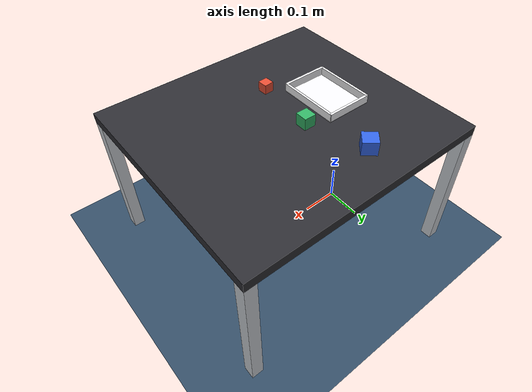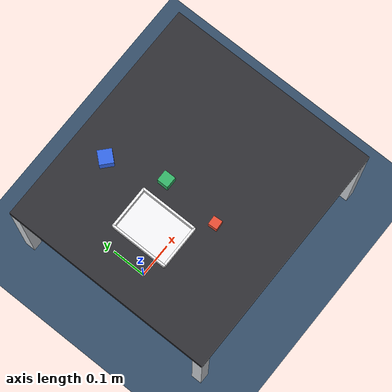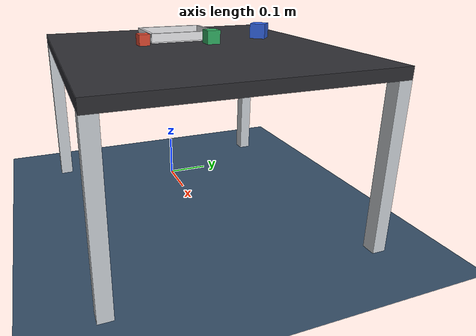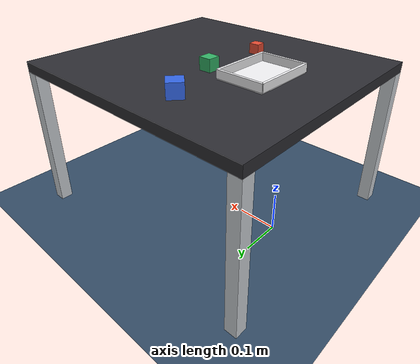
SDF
<?xml version="1.0" ?>
<!--
  Unified world for the SO-ARM101 table scene.
  Single source of truth — loaded natively in Gazebo and converted to MJCF
  at launch time for MuJoCo (via sdformat_mjcf).
-->
<sdf version="1.9">
  <world name="pai_world">

    <scene>
      <ambient>0.4 0.4 0.4</ambient>
      <grid>false</grid>
    </scene>

    <gui fullscreen="0">

      <!-- 3D scene -->
      <plugin filename="MinimalScene" name="3D View">
        <gz-gui>
          <title>3D View</title>
          <property type="bool" key="showTitleBar">false</property>
          <property type="string" key="state">docked</property>
        </gz-gui>
        <engine>ogre2</engine>
        <shadows>
          <enabled>true</enabled>
          <texture_size light_type="spotlight">2048</texture_size>
          <near>0.005</near>
          <far>10</far>
          <bias>0.001</bias>
        </shadows>
        <camera_clip>
          <near>0.05</near>
          <far>50000</far>
        </camera_clip>
        <camera_pose>-0.5 -0.8 1.5 0.0 0.54 1.11</camera_pose>
      </plugin>

      <plugin filename="GlobalIlluminationVct" name="GI">
        <gz-gui>
          <property type="string" key="state">docked_collapsed</property>
        </gz-gui>
        <enabled>true</enabled>
        <highQuality>false</highQuality>
        <resolution>256 256 256</resolution>
        <octantCount>1 1 1</octantCount>
        <conserveMemory>true</conserveMemory>
        <thinWallCounter>1.0</thinWallCounter>
        <anisotropic>true</anisotropic>
        <bounceCount>3</bounceCount>
      </plugin>

      <plugin filename="EntityContextMenuPlugin" name="Entity context menu">
        <gz-gui>
          <property key="state" type="string">floating</property>
          <property key="width" type="double">5</property>
          <property key="height" type="double">5</property>
          <property key="showTitleBar" type="bool">false</property>
        </gz-gui>
      </plugin>
      <plugin filename="GzSceneManager" name="Scene Manager">
        <gz-gui>
          <property key="resizable" type="bool">false</property>
          <property key="width" type="double">5</property>
          <property key="height" type="double">5</property>
          <property key="state" type="string">floating</property>
          <property key="showTitleBar" type="bool">false</property>
        </gz-gui>
      </plugin>
      <plugin filename="InteractiveViewControl" name="Interactive view control">
        <gz-gui>
          <property key="resizable" type="bool">false</property>
          <property key="width" type="double">5</property>
          <property key="height" type="double">5</property>
          <property key="state" type="string">floating</property>
          <property key="showTitleBar" type="bool">false</property>
        </gz-gui>
      </plugin>
      <plugin filename="CameraTracking" name="Camera Tracking">
        <gz-gui>
          <property key="resizable" type="bool">false</property>
          <property key="width" type="double">5</property>
          <property key="height" type="double">5</property>
          <property key="state" type="string">floating</property>
          <property key="showTitleBar" type="bool">false</property>
        </gz-gui>
      </plugin>
      <plugin filename="MarkerManager" name="Marker manager">
        <gz-gui>
          <property key="resizable" type="bool">false</property>
          <property key="width" type="double">5</property>
          <property key="height" type="double">5</property>
          <property key="state" type="string">floating</property>
          <property key="showTitleBar" type="bool">false</property>
        </gz-gui>
      </plugin>
      <plugin filename="SelectEntities" name="Select Entities">
        <gz-gui>
          <anchors target="Select entities">
            <line own="right" target="right"/>
            <line own="top" target="top"/>
          </anchors>
          <property key="resizable" type="bool">false</property>
          <property key="width" type="double">5</property>
          <property key="height" type="double">5</property>
          <property key="state" type="string">floating</property>
          <property key="showTitleBar" type="bool">false</property>
        </gz-gui>
      </plugin>
      <plugin filename="VisualizationCapabilities" name="Visualization Capabilities">
        <gz-gui>
          <property key="resizable" type="bool">false</property>
          <property key="width" type="double">5</property>
          <property key="height" type="double">5</property>
          <property key="state" type="string">floating</property>
          <property key="showTitleBar" type="bool">false</property>
        </gz-gui>
      </plugin>

      <plugin filename="Spawn" name="Spawn Entities">
        <gz-gui>
          <anchors target="Select entities">
            <line own="right" target="right"/>
            <line own="top" target="top"/>
          </anchors>
          <property key="resizable" type="bool">false</property>
          <property key="width" type="double">5</property>
          <property key="height" type="double">5</property>
          <property key="state" type="string">floating</property>
          <property key="showTitleBar" type="bool">false</property>
        </gz-gui>
      </plugin>

      <!-- World control -->
      <plugin filename="WorldControl" name="World control">
        <gz-gui>
          <title>World control</title>
          <property type="bool" key="showTitleBar">false</property>
          <property type="bool" key="resizable">false</property>
          <property type="double" key="height">72</property>
          <property type="double" key="z">1</property>
          <property type="string" key="state">floating</property>
          <anchors target="3D View">
            <line own="left" target="left"/>
            <line own="bottom" target="bottom"/>
          </anchors>
        </gz-gui>
        <play_pause>true</play_pause>
        <step>true</step>
        <start_paused>false</start_paused>
        <use_event>true</use_event>
      </plugin>

      <!-- World statistics -->
      <plugin filename="WorldStats" name="World stats">
        <gz-gui>
          <title>World stats</title>
          <property type="bool" key="showTitleBar">false</property>
          <property type="bool" key="resizable">false</property>
          <property type="double" key="height">110</property>
          <property type="double" key="width">290</property>
          <property type="double" key="z">1</property>
          <property type="string" key="state">floating</property>
          <anchors target="3D View">
            <line own="right" target="right"/>
            <line own="bottom" target="bottom"/>
          </anchors>
        </gz-gui>
        <sim_time>true</sim_time>
        <real_time>true</real_time>
        <real_time_factor>true</real_time_factor>
        <iterations>true</iterations>
      </plugin>

      <plugin filename="Shapes" name="Shapes">
        <gz-gui>
          <property key="resizable" type="bool">false</property>
          <property key="x" type="double">0</property>
          <property key="y" type="double">0</property>
          <property key="width" type="double">250</property>
          <property key="height" type="double">50</property>
          <property key="state" type="string">floating</property>
          <property key="showTitleBar" type="bool">false</property>
          <property key="cardBackground" type="string">#666666</property>
        </gz-gui>
      </plugin>

      <plugin filename="Lights" name="Lights">
        <gz-gui>
          <property key="resizable" type="bool">false</property>
          <property key="x" type="double">250</property>
          <property key="y" type="double">0</property>
          <property key="width" type="double">150</property>
          <property key="height" type="double">50</property>
          <property key="state" type="string">floating</property>
          <property key="showTitleBar" type="bool">false</property>
          <property key="cardBackground" type="string">#666666</property>
        </gz-gui>
      </plugin>

      <plugin filename="TransformControl" name="Transform control">
        <gz-gui>
          <property key="resizable" type="bool">false</property>
          <property key="x" type="double">0</property>
          <property key="y" type="double">50</property>
          <property key="width" type="double">250</property>
          <property key="height" type="double">50</property>
          <property key="state" type="string">floating</property>
          <property key="showTitleBar" type="bool">false</property>
          <property key="cardBackground" type="string">#777777</property>
        </gz-gui>
      </plugin>

      <plugin filename="Screenshot" name="Screenshot">
        <gz-gui>
          <property key="resizable" type="bool">false</property>
          <property key="x" type="double">250</property>
          <property key="y" type="double">50</property>
          <property key="width" type="double">50</property>
          <property key="height" type="double">50</property>
          <property key="state" type="string">floating</property>
          <property key="showTitleBar" type="bool">false</property>
          <property key="cardBackground" type="string">#777777</property>
        </gz-gui>
      </plugin>

      <plugin filename="VideoRecorder" name="VideoRecorder">
        <gz-gui>
          <property key="resizable" type="bool">false</property>
          <property key="x" type="double">300</property>
          <property key="y" type="double">50</property>
          <property key="width" type="double">50</property>
          <property key="height" type="double">50</property>
          <property key="state" type="string">floating</property>
          <property key="showTitleBar" type="bool">false</property>
          <property key="cardBackground" type="string">#777777</property>
        </gz-gui>
        <record_video>
          <use_sim_time>true</use_sim_time>
          <lockstep>false</lockstep>
          <bitrate>4000000</bitrate>
        </record_video>
      </plugin>

      <!-- Inspector -->
      <plugin filename="ComponentInspector" name="Component inspector">
        <gz-gui>
          <property type="string" key="state">docked_collapsed</property>
        </gz-gui>
      </plugin>

      <!-- Entity tree -->
      <plugin filename="EntityTree" name="Entity tree">
        <gz-gui>
          <property type="string" key="state">docked_collapsed</property>
        </gz-gui>
      </plugin>

      <!-- View angle -->
      <plugin filename="ViewAngle" name="View angle">
        <gz-gui>
          <property type="string" key="state">docked_collapsed</property>
        </gz-gui>
      </plugin>

      <!-- Apply Force and Torque -->
      <plugin filename="ApplyForceTorque">
        <gz-gui>
          <property type="string" key="state">docked_collapsed</property>
        </gz-gui>
      </plugin>
    </gui>

    <!-- System plugins -->
    <plugin
      filename="gz-sim-sensors-system"
      name="gz::sim::systems::Sensors">
      <render_engine>ogre2</render_engine>
      <global_illumination type="vct">
        <enabled>true</enabled>
        <resolution>256 256 256</resolution>
        <octant_count>1 1 1</octant_count>
        <bounce_count>3</bounce_count>
        <high_quality>false</high_quality>
        <anisotropic>true</anisotropic>
        <thin_wall_counter>1.0</thin_wall_counter>
        <conserve_memory>true</conserve_memory>
        <debug_vis_mode>none</debug_vis_mode>
      </global_illumination>
    </plugin>
    <plugin
      filename="gz-sim-user-commands-system"
      name="gz::sim::systems::UserCommands">
    </plugin>
    <plugin
      filename="gz-sim-scene-broadcaster-system"
      name="gz::sim::systems::SceneBroadcaster">
    </plugin>
    <plugin
      filename="gz-sim-contact-system"
      name="gz::sim::systems::Contact">
    </plugin>

    <gravity>0 0 -9.8</gravity>

    <!-- Lighting -->
    <light type="spot" name="spot">
      <pose>0 0 2.0 0 0 0</pose>
      <cast_shadows>true</cast_shadows>
      <diffuse>1 1 1 1</diffuse>
      <intensity>1.5</intensity>
      <specular>.1 .1 .1 1</specular>
      <attenuation>
        <range>4</range>
        <constant>0.05</constant>
        <linear>1.2</linear>
        <quadratic>2.0</quadratic>
      </attenuation>
      <spot>
        <outer_angle>1.5</outer_angle>
      </spot>
    </light>

    <!-- Ground plane -->
    <model name="ground_plane">
      <static>true</static>
      <link name="link">
        <collision name="collision">
          <geometry>
            <plane>
              <normal>0 0 1</normal>
              <size>3 3</size>
            </plane>
          </geometry>
        </collision>
        <visual name="visual">
          <geometry>
            <plane>
              <normal>0 0 1</normal>
              <size>3 3</size>
            </plane>
          </geometry>
          <material>
            <ambient>0.2 0.3 0.4 1</ambient>
            <diffuse>0.2 0.3 0.4 1</diffuse>
          </material>
        </visual>
      </link>
    </model>

    <model name="table">
      <static>true</static>
      <pose>0.2 0.0 0.38 0 0 0</pose>
      <link name="table_top">
        <collision name="collision">
          <geometry>
            <box><size>0.66 0.6 0.026</size></box>
          </geometry>
        <surface>
          <friction>
            <ode>
              <mu>0.5</mu>
              <mu2>0.5</mu2>
            </ode>
          </friction>
        </surface>
        </collision>
        <visual name="visual">
          <geometry>
            <box><size>0.66 0.6 0.026</size></box>
          </geometry>
          <material>
            <ambient>0.18 0.18 0.2 1</ambient>
            <diffuse>0.18 0.18 0.2 1</diffuse>
            <specular>0.12 0.12 0.12 1</specular>
          </material>
        </visual>
      </link>
      <link name="leg_fl">
        <pose>-0.315 0.285 -0.1965 0 0 0</pose>
        <collision name="collision">
          <geometry><box><size>0.03 0.03 0.367</size></box></geometry>
        </collision>
        <visual name="visual">
          <geometry><box><size>0.03 0.03 0.367</size></box></geometry>
          <material>
            <ambient>0.82 0.84 0.86 1</ambient>
            <diffuse>0.82 0.84 0.86 1</diffuse>
          </material>
        </visual>
      </link>
      <link name="leg_fr">
        <pose>0.315 0.285 -0.1965 0 0 0</pose>
        <collision name="collision">
          <geometry><box><size>0.03 0.03 0.367</size></box></geometry>
        </collision>
        <visual name="visual">
          <geometry><box><size>0.03 0.03 0.367</size></box></geometry>
          <material>
            <ambient>0.82 0.84 0.86 1</ambient>
            <diffuse>0.82 0.84 0.86 1</diffuse>
          </material>
        </visual>
      </link>
      <link name="leg_bl">
        <pose>-0.315 -0.285 -0.1965 0 0 0</pose>
        <collision name="collision">
          <geometry><box><size>0.03 0.03 0.367</size></box></geometry>
        </collision>
        <visual name="visual">
          <geometry><box><size>0.03 0.03 0.367</size></box></geometry>
          <material>
            <ambient>0.82 0.84 0.86 1</ambient>
            <diffuse>0.82 0.84 0.86 1</diffuse>
          </material>
        </visual>
      </link>
      <link name="leg_br">
        <pose>0.315 -0.285 -0.1965 0 0 0</pose>
        <collision name="collision">
          <geometry><box><size>0.03 0.03 0.367</size></box></geometry>
        </collision>
        <visual name="visual">
          <geometry><box><size>0.03 0.03 0.367</size></box></geometry>
          <material>
            <ambient>0.82 0.84 0.86 1</ambient>
            <diffuse>0.82 0.84 0.86 1</diffuse>
          </material>
        </visual>
      </link>
      <joint name="leg_fl_joint" type="fixed">
        <parent>table_top</parent><child>leg_fl</child>
      </joint>
      <joint name="leg_fr_joint" type="fixed">
        <parent>table_top</parent><child>leg_fr</child>
      </joint>
      <joint name="leg_bl_joint" type="fixed">
        <parent>table_top</parent><child>leg_bl</child>
      </joint>
      <joint name="leg_br_joint" type="fixed">
        <parent>table_top</parent><child>leg_br</child>
      </joint>
    </model>

    <!--
      Tray: 120mm x 160mm x 20mm, floor + 4 walls.
      Short edge (120mm) along X, long edge (160mm) along Y.
    -->
    <model name="tray">
      <static>true</static>
      <pose>0.06 0.0 0.3945 0 0 0</pose>
      <link name="tray_floor">
        <collision name="collision">
          <geometry><box><size>0.12 0.16 0.003</size></box></geometry>
        </collision>
        <visual name="visual">
          <geometry><box><size>0.12 0.16 0.003</size></box></geometry>
          <material>
            <ambient>0.95 0.95 0.96 1</ambient>
            <diffuse>0.95 0.95 0.96 1</diffuse>
            <specular>0.2 0.2 0.2 1</specular>
          </material>
        </visual>
      </link>
      <link name="tray_wall_f">
        <pose>0 0.0785 0.0115 0 0 0</pose>
        <collision name="collision">
          <geometry><box><size>0.12 0.006 0.02</size></box></geometry>
        <surface>
          <friction>
            <ode>
              <mu>0.5</mu>
              <mu2>0.5</mu2>
            </ode>
          </friction>
        </surface>
        </collision>
        <visual name="visual">
          <geometry><box><size>0.12 0.006 0.02</size></box></geometry>
          <material>
            <ambient>0.95 0.95 0.96 1</ambient>
            <diffuse>0.95 0.95 0.96 1</diffuse>
          </material>
        </visual>
      </link>
      <link name="tray_wall_b">
        <pose>0 -0.0785 0.0115 0 0 0</pose>
        <collision name="collision">
          <geometry><box><size>0.12 0.006 0.02</size></box></geometry>
        <surface>
          <friction>
            <ode>
              <mu>0.5</mu>
              <mu2>0.5</mu2>
            </ode>
          </friction>
        </surface>
        </collision>
        <visual name="visual">
          <geometry><box><size>0.12 0.006 0.02</size></box></geometry>
          <material>
            <ambient>0.95 0.95 0.96 1</ambient>
            <diffuse>0.95 0.95 0.96 1</diffuse>
          </material>
        </visual>
      </link>
      <link name="tray_wall_l">
        <pose>-0.0585 0 0.0115 0 0 0</pose>
        <collision name="collision">
          <geometry><box><size>0.006 0.16 0.02</size></box></geometry>
        <surface>
          <friction>
            <ode>
              <mu>0.5</mu>
              <mu2>0.5</mu2>
            </ode>
          </friction>
        </surface>
        </collision>
        <visual name="visual">
          <geometry><box><size>0.006 0.16 0.02</size></box></geometry>
          <material>
            <ambient>0.95 0.95 0.96 1</ambient>
            <diffuse>0.95 0.95 0.96 1</diffuse>
          </material>
        </visual>
      </link>
      <link name="tray_wall_r">
        <pose>0.0585 0 0.0115 0 0 0</pose>
        <collision name="collision">
          <geometry><box><size>0.006 0.16 0.02</size></box></geometry>
          <surface>
            <friction>
              <ode>
                <mu>0.5</mu>
                <mu2>0.5</mu2>
              </ode>
            </friction>
          </surface>
        </collision>
        <visual name="visual">
          <geometry><box><size>0.006 0.16 0.02</size></box></geometry>
          <material>
            <ambient>0.95 0.95 0.96 1</ambient>
            <diffuse>0.95 0.95 0.96 1</diffuse>
          </material>
        </visual>
      </link>
      <joint name="wall_f_joint" type="fixed">
        <parent>tray_floor</parent><child>tray_wall_f</child>
      </joint>
      <joint name="wall_b_joint" type="fixed">
        <parent>tray_floor</parent><child>tray_wall_b</child>
      </joint>
      <joint name="wall_l_joint" type="fixed">
        <parent>tray_floor</parent><child>tray_wall_l</child>
      </joint>
      <joint name="wall_r_joint" type="fixed">
        <parent>tray_floor</parent><child>tray_wall_r</child>
      </joint>
    </model>

    <!-- Cube small: 25mm, 0.02 kg, red -->
    <model name="cube_small">
      <pose>0.16 -0.11 0.41 0 0 0.06</pose>
      <link name="link">
        <inertial>
          <mass>0.02</mass>
          <inertia>
            <ixx>0.000002083</ixx><ixy>0</ixy><ixz>0</ixz>
            <iyy>0.000002083</iyy><iyz>0</iyz>
            <izz>0.000002083</izz>
          </inertia>
        </inertial>
        <collision name="collision">
          <geometry><box><size>0.025 0.025 0.025</size></box></geometry>
        <surface>
          <friction>
            <ode>
              <mu>0.5</mu>
              <mu2>0.5</mu2>
            </ode>
          </friction>
        </surface>
        </collision>
        <visual name="visual">
          <geometry><box><size>0.025 0.025 0.025</size></box></geometry>
          <material>
            <ambient>0.9 0.3 0.2 1</ambient>
            <diffuse>0.9 0.3 0.2 1</diffuse>
          </material>
        </visual>
      </link>
    </model>

    <!-- Cube medium: 31.2mm, 0.04 kg, green -->
    <model name="cube_medium">
      <pose>0.17 0.05 0.41 0 0 0</pose>
      <link name="link">
        <inertial>
          <mass>0.04</mass>
          <inertia>
            <ixx>0.000006490</ixx><ixy>0</ixy><ixz>0</ixz>
            <iyy>0.000006490</iyy><iyz>0</iyz>
            <izz>0.000006490</izz>
          </inertia>
        </inertial>
        <collision name="collision">
          <geometry><box><size>0.0312 0.0312 0.0312</size></box></geometry>
        <surface>
          <friction>
            <ode>
              <mu>0.5</mu>
              <mu2>0.5</mu2>
            </ode>
          </friction>
        </surface>
        </collision>
        <visual name="visual">
          <geometry><box><size>0.0312 0.0312 0.0312</size></box></geometry>
          <material>
            <ambient>0.2 0.7 0.4 1</ambient>
            <diffuse>0.2 0.7 0.4 1</diffuse>
          </material>
        </visual>
      </link>
    </model>

    <!-- Cube large: 37.6mm, 0.08 kg, blue -->
    <model name="cube_large">
      <pose>0.12 0.20 0.41 0 0 -0.73</pose>
      <link name="link">
        <inertial>
          <mass>0.08</mass>
          <inertia>
            <ixx>0.000018850</ixx><ixy>0</ixy><ixz>0</ixz>
            <iyy>0.000018850</iyy><iyz>0</iyz>
            <izz>0.000018850</izz>
          </inertia>
        </inertial>
        <collision name="collision">
          <geometry><box><size>0.0356 0.0356 0.0356</size></box></geometry>
        <surface>
          <friction>
            <ode>
              <mu>0.5</mu>
              <mu2>0.5</mu2>
            </ode>
          </friction>
        </surface>
        </collision>
        <visual name="visual">
          <geometry><box><size>0.0376 0.0376 0.0376</size></box></geometry>
          <material>
            <ambient>0.2 0.4 0.9 1</ambient>
            <diffuse>0.2 0.4 0.9 1</diffuse>
          </material>
        </visual>
      </link>
    </model>

  </world>
</sdf>
